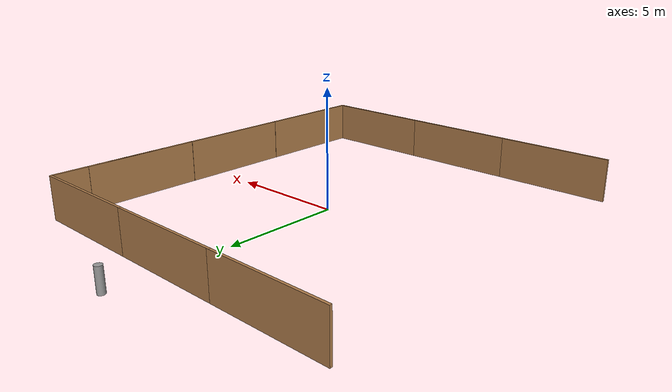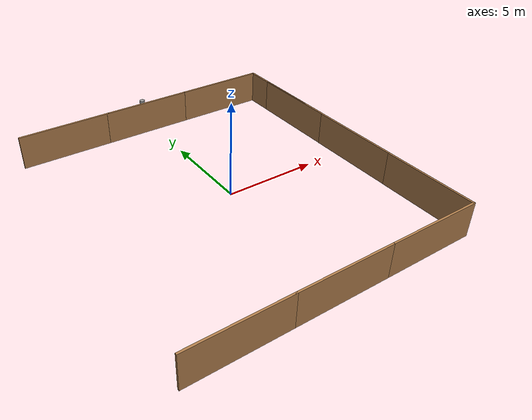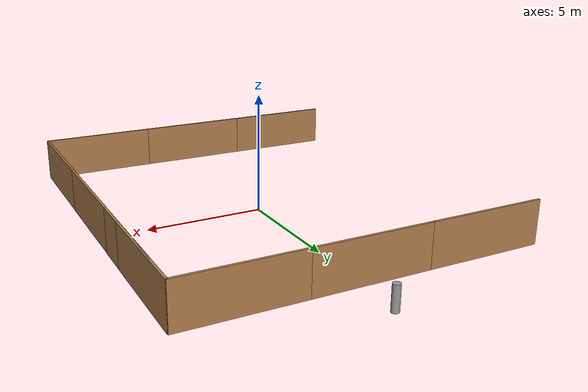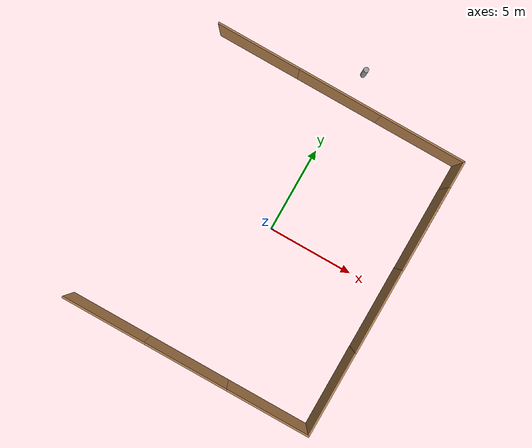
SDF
<sdf version="1.7">
 <world name="default">
  <model name="fence_clone_6_clone_clone_2">
   <static>1</static>
   <link name="link">
    <pose>0 0 0.915 0 -0 0</pose>
    <collision name="collision"><geometry><box><size>0.1 5 1.83</size></box></geometry></collision>
    <visual name="visual">
     <cast_shadows>0</cast_shadows>
     <geometry><box><size>0.1 5 1.83</size></box></geometry>
     <material>
      <script>
       <uri>https://fuel.ignitionrobotics.org/1.0/athackst/models/fence/2/files/materials/scripts</uri>
       <uri>https://fuel.ignitionrobotics.org/1.0/athackst/models/fence/2/files/materials/textures</uri>
       <name>Fence/WoodBoarding</name>
      </script>
     </material>
    </visual>
   </link>
   <pose>-5.31329 -8.50005 0 0 -0 1.57076</pose>
  </model>
  <model name="fence_clone_6_clone_clone_3">
   <static>1</static>
   <link name="link">
    <pose>0 0 0.915 0 -0 0</pose>
    <collision name="collision"><geometry><box><size>0.1 5 1.83</size></box></geometry></collision>
    <visual name="visual">
     <cast_shadows>0</cast_shadows>
     <geometry><box><size>0.1 5 1.83</size></box></geometry>
     <material>
      <script>
       <uri>https://fuel.ignitionrobotics.org/1.0/athackst/models/fence/2/files/materials/scripts</uri>
       <uri>https://fuel.ignitionrobotics.org/1.0/athackst/models/fence/2/files/materials/textures</uri>
       <name>Fence/WoodBoarding</name>
      </script>
     </material>
    </visual>
   </link>
   <pose>-0.412046 -8.50003 0 0 -0 1.57076</pose>
  </model>
  <model name="fence_clone_6_clone_clone_4">
   <static>1</static>
   <link name="link">
    <pose>0 0 0.915 0 -0 0</pose>
    <collision name="collision"><geometry><box><size>0.1 5 1.83</size></box></geometry></collision>
    <visual name="visual">
     <cast_shadows>0</cast_shadows>
     <geometry><box><size>0.1 5 1.83</size></box></geometry>
     <material>
      <script>
       <uri>https://fuel.ignitionrobotics.org/1.0/athackst/models/fence/2/files/materials/scripts</uri>
       <uri>https://fuel.ignitionrobotics.org/1.0/athackst/models/fence/2/files/materials/textures</uri>
       <name>Fence/WoodBoarding</name>
      </script>
     </material>
    </visual>
   </link>
   <pose>4.54305 -8.5 0 0 -0 1.57076</pose>
  </model>
  <model name="fence_clone_6_clone_clone_10_clone_clone_1">
   <static>1</static>
   <link name="link">
    <pose>0 0 0.915 0 -0 0</pose>
    <collision name="collision"><geometry><box><size>0.1 5 1.83</size></box></geometry></collision>
    <visual name="visual">
     <cast_shadows>0</cast_shadows>
     <geometry><box><size>0.1 5 1.83</size></box></geometry>
     <material>
      <script>
       <uri>https://fuel.ignitionrobotics.org/1.0/athackst/models/fence/2/files/materials/scripts</uri>
       <uri>https://fuel.ignitionrobotics.org/1.0/athackst/models/fence/2/files/materials/textures</uri>
       <name>Fence/WoodBoarding</name>
      </script>
     </material>
    </visual>
   </link>
   <pose>7 -6 0 0 -0 3.14159</pose>
  </model>
  <model name="fence_clone_6_clone_clone_10_clone_clone_3">
   <static>1</static>
   <link name="link">
    <pose>0 0 0.915 0 -0 0</pose>
    <collision name="collision"><geometry><box><size>0.1 5 1.83</size></box></geometry></collision>
    <visual name="visual">
     <cast_shadows>0</cast_shadows>
     <geometry><box><size>0.1 5 1.83</size></box></geometry>
     <material>
      <script>
       <uri>https://fuel.ignitionrobotics.org/1.0/athackst/models/fence/2/files/materials/scripts</uri>
       <uri>https://fuel.ignitionrobotics.org/1.0/athackst/models/fence/2/files/materials/textures</uri>
       <name>Fence/WoodBoarding</name>
      </script>
     </material>
    </visual>
   </link>
   <pose>7.00832 -1.02384 0 0 0 -3.14159</pose>
  </model>
  <model name="fence_clone_6_clone_clone_10_clone_clone_4">
   <static>1</static>
   <link name="link">
    <pose>0 0 0.915 0 -0 0</pose>
    <collision name="collision"><geometry><box><size>0.1 5 1.83</size></box></geometry></collision>
    <visual name="visual">
     <cast_shadows>0</cast_shadows>
     <geometry><box><size>0.1 5 1.83</size></box></geometry>
     <material>
      <script>
       <uri>https://fuel.ignitionrobotics.org/1.0/athackst/models/fence/2/files/materials/scripts</uri>
       <uri>https://fuel.ignitionrobotics.org/1.0/athackst/models/fence/2/files/materials/textures</uri>
       <name>Fence/WoodBoarding</name>
      </script>
     </material>
    </visual>
   </link>
   <pose>7.01765 3.9664 0 0 0 -3.14159</pose>
  </model>
  <model name="fence_clone_6_clone_clone_10_clone_clone_5">
   <static>1</static>
   <link name="link">
    <pose>0 0 0.915 0 -0 0</pose>
    <collision name="collision"><geometry><box><size>0.1 5 1.83</size></box></geometry></collision>
    <visual name="visual">
     <cast_shadows>0</cast_shadows>
     <geometry><box><size>0.1 5 1.83</size></box></geometry>
     <material>
      <script>
       <uri>https://fuel.ignitionrobotics.org/1.0/athackst/models/fence/2/files/materials/scripts</uri>
       <uri>https://fuel.ignitionrobotics.org/1.0/athackst/models/fence/2/files/materials/textures</uri>
       <name>Fence/WoodBoarding</name>
      </script>
     </material>
    </visual>
   </link>
   <pose>7.02194 5.50018 0 0 0 -3.14159</pose>
  </model>
  <model name="fence_clone_6_clone_clone_10_clone_clone_6_clone_clone_4">
   <static>1</static>
   <link name="link">
    <pose>0 0 0.915 0 -0 0</pose>
    <collision name="collision"><geometry><box><size>0.1 5 1.83</size></box></geometry></collision>
    <visual name="visual">
     <cast_shadows>0</cast_shadows>
     <geometry><box><size>0.1 5 1.83</size></box></geometry>
     <material>
      <script>
       <uri>https://fuel.ignitionrobotics.org/1.0/athackst/models/fence/2/files/materials/scripts</uri>
       <uri>https://fuel.ignitionrobotics.org/1.0/athackst/models/fence/2/files/materials/textures</uri>
       <name>Fence/WoodBoarding</name>
      </script>
     </material>
    </visual>
   </link>
   <pose>4.55 8 -0 0 0 -1.57077</pose>
  </model>
  <model name="fence_clone_6_clone_clone_10_clone_clone_6_clone_clone_5">
   <static>1</static>
   <link name="link">
    <pose>0 0 0.915 0 -0 0</pose>
    <collision name="collision"><geometry><box><size>0.1 5 1.83</size></box></geometry></collision>
    <visual name="visual">
     <cast_shadows>0</cast_shadows>
     <geometry><box><size>0.1 5 1.83</size></box></geometry>
     <material>
      <script>
       <uri>https://fuel.ignitionrobotics.org/1.0/athackst/models/fence/2/files/materials/scripts</uri>
       <uri>https://fuel.ignitionrobotics.org/1.0/athackst/models/fence/2/files/materials/textures</uri>
       <name>Fence/WoodBoarding</name>
      </script>
     </material>
    </visual>
   </link>
   <pose>-0.372281 8 -0 0 0 -1.57077</pose>
  </model>
  <model name="fence_clone_6_clone_clone_10_clone_clone_6_clone_clone_6">
   <static>1</static>
   <link name="link">
    <pose>0 0 0.915 0 -0 0</pose>
    <collision name="collision"><geometry><box><size>0.1 5 1.83</size></box></geometry></collision>
    <visual name="visual">
     <cast_shadows>0</cast_shadows>
     <geometry><box><size>0.1 5 1.83</size></box></geometry>
     <material>
      <script>
       <uri>https://fuel.ignitionrobotics.org/1.0/athackst/models/fence/2/files/materials/scripts</uri>
       <uri>https://fuel.ignitionrobotics.org/1.0/athackst/models/fence/2/files/materials/textures</uri>
       <name>Fence/WoodBoarding</name>
      </script>
     </material>
    </visual>
   </link>
   <pose>-5.26157 8 0 0 0 -1.57078</pose>
  </model>
  <model name="30cmcyldinder">
   <link name="link_0">
    <inertial>
     <mass>1</mass>
     <inertia><ixx>0.145833</ixx><ixy>0</ixy><ixz>0</ixz><iyy>0.145833</iyy><iyz>0</iyz><izz>0.125</izz></inertia>
    </inertial>
    <visual name="visual">
     <geometry><cylinder><radius>0.15</radius><length>1</length></cylinder></geometry>
     <material>
      <lighting>1</lighting>
      <script><uri>file://media/materials/scripts/gazebo.material</uri><name>Gazebo/Grey</name></script>
      <shader type="pixel"><normal_map>__default__</normal_map></shader>
      <ambient>0.3 0.3 0.3 1</ambient>
      <diffuse>0.7 0.7 0.7 1</diffuse>
      <specular>0.01 0.01 0.01 1</specular>
      <emissive>0 0 0 1</emissive>
     </material>
    </visual>
    <collision name="collision">
     <geometry><cylinder><radius>0.5</radius><length>1</length></cylinder></geometry>
     <surface>
      <friction>
       <ode><mu>1</mu><mu2>1</mu2><fdir1>0 0 0</fdir1><slip1>0</slip1><slip2>0</slip2></ode>
       <torsional>
        <coefficient>1</coefficient>
        <patch_radius>0</patch_radius>
        <surface_radius>0</surface_radius>
        <use_patch_radius>1</use_patch_radius>
        <ode><slip>0</slip></ode>
       </torsional>
      </friction>
      <bounce><restitution_coefficient>0</restitution_coefficient><threshold>1e+06</threshold></bounce>
      <contact>
       <collide_without_contact>0</collide_without_contact>
       <collide_without_contact_bitmask>1</collide_without_contact_bitmask>
       <collide_bitmask>1</collide_bitmask>
       <ode>
        <soft_cfm>0</soft_cfm>
        <soft_erp>0.2</soft_erp>
        <kp>1e+13</kp>
        <kd>1</kd>
        <max_vel>0.01</max_vel>
        <min_depth>0</min_depth>
       </ode>
       <bullet>
        <split_impulse>1</split_impulse>
        <split_impulse_penetration_threshold>-0.01</split_impulse_penetration_threshold>
        <soft_cfm>0</soft_cfm>
        <soft_erp>0.2</soft_erp>
        <kp>1e+13</kp>
        <kd>1</kd>
       </bullet>
      </contact>
     </surface>
    </collision>
   </link>
   <static>0</static>
   <pose>0.191408 9.94601 0.5 0 -0 0</pose>
  </model>
 </world>
</sdf>
